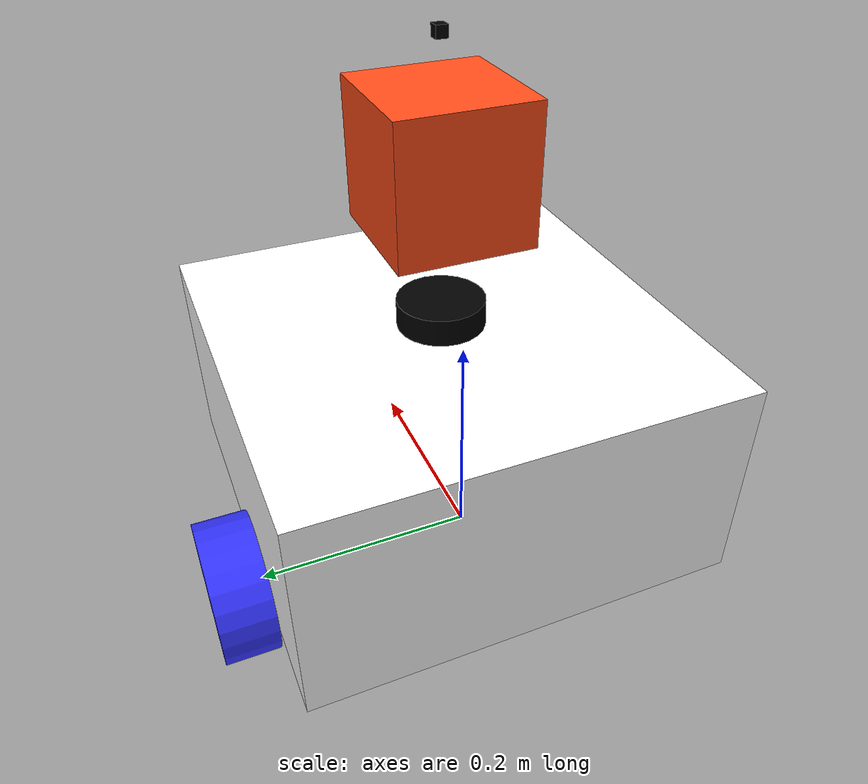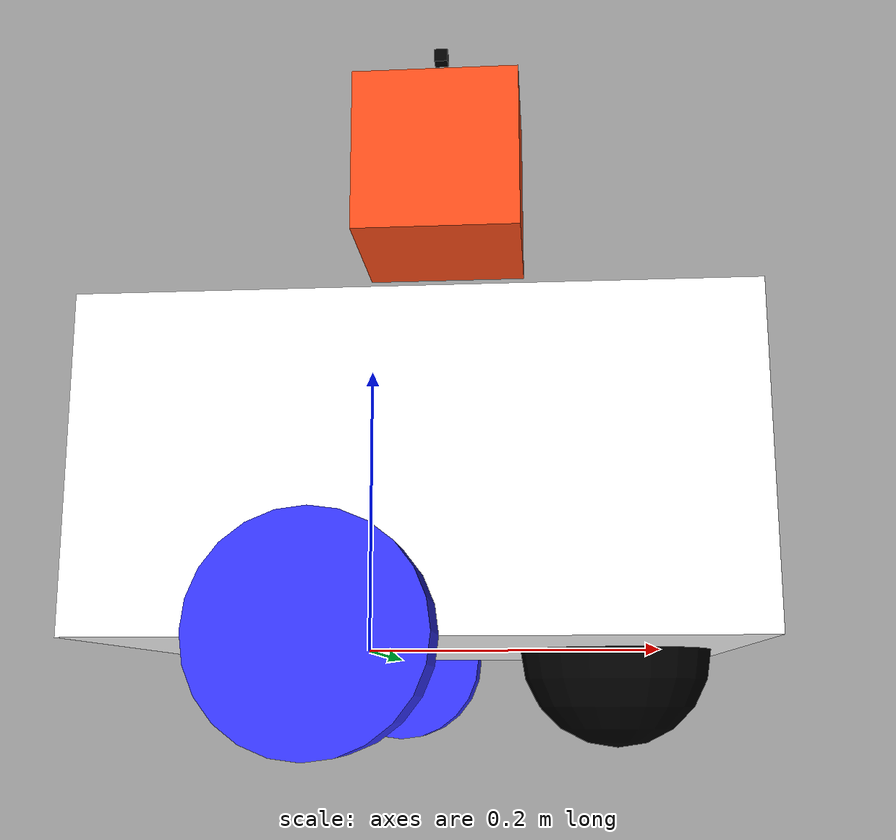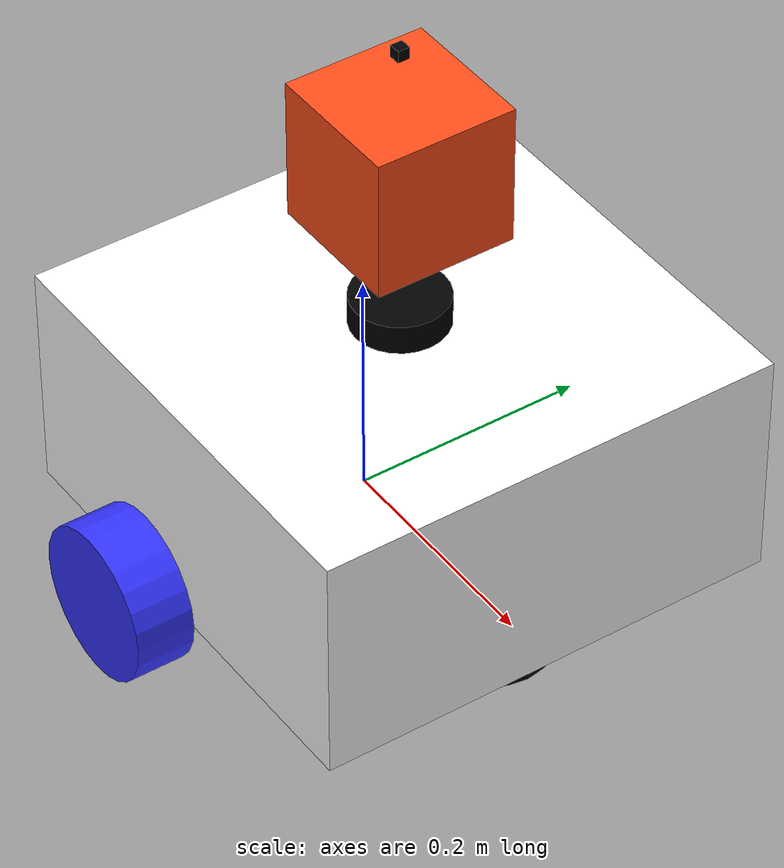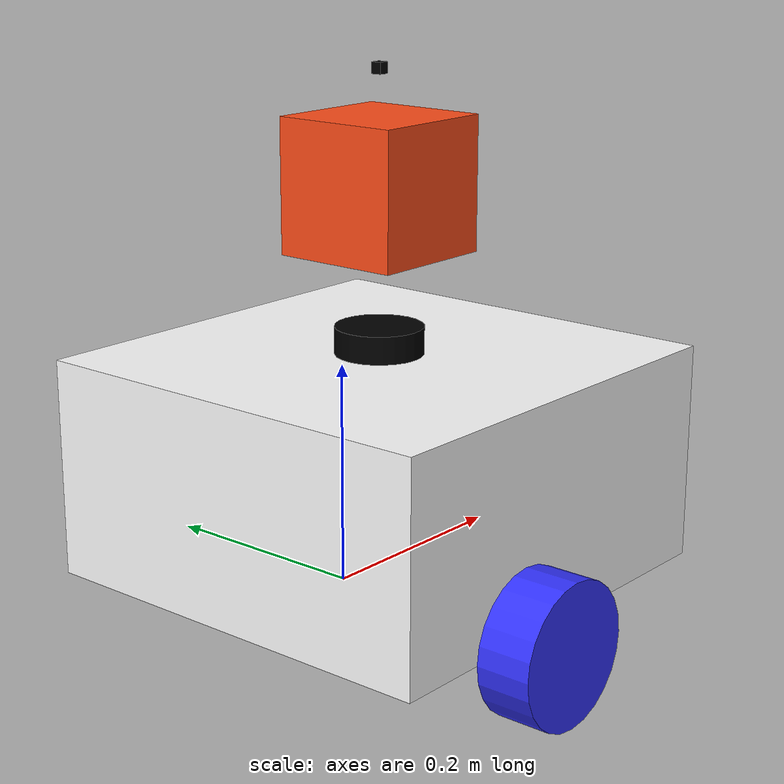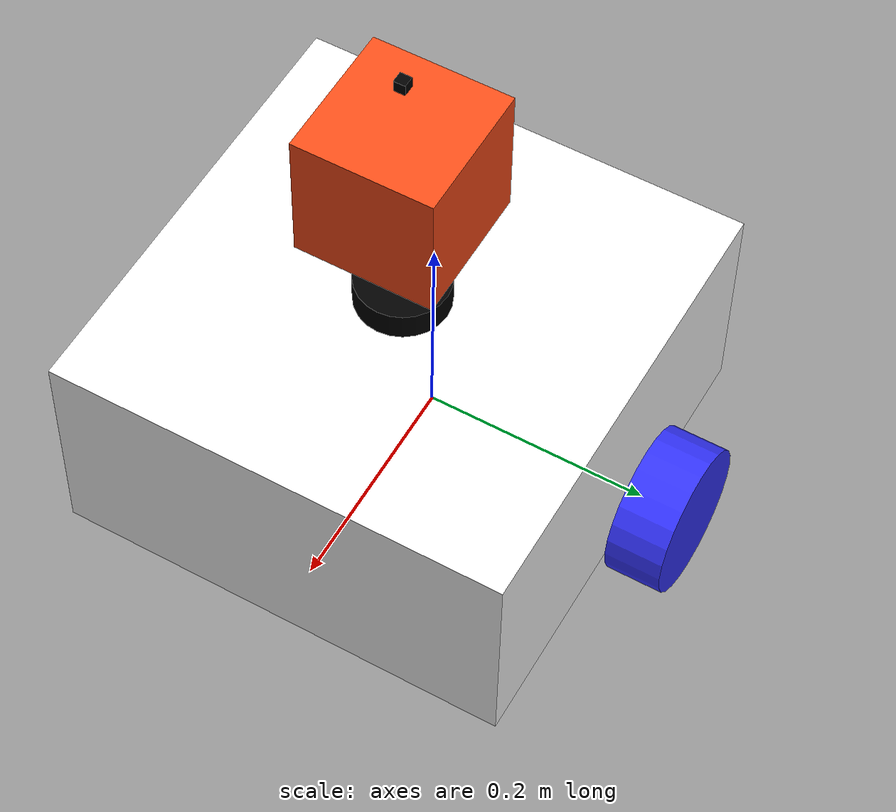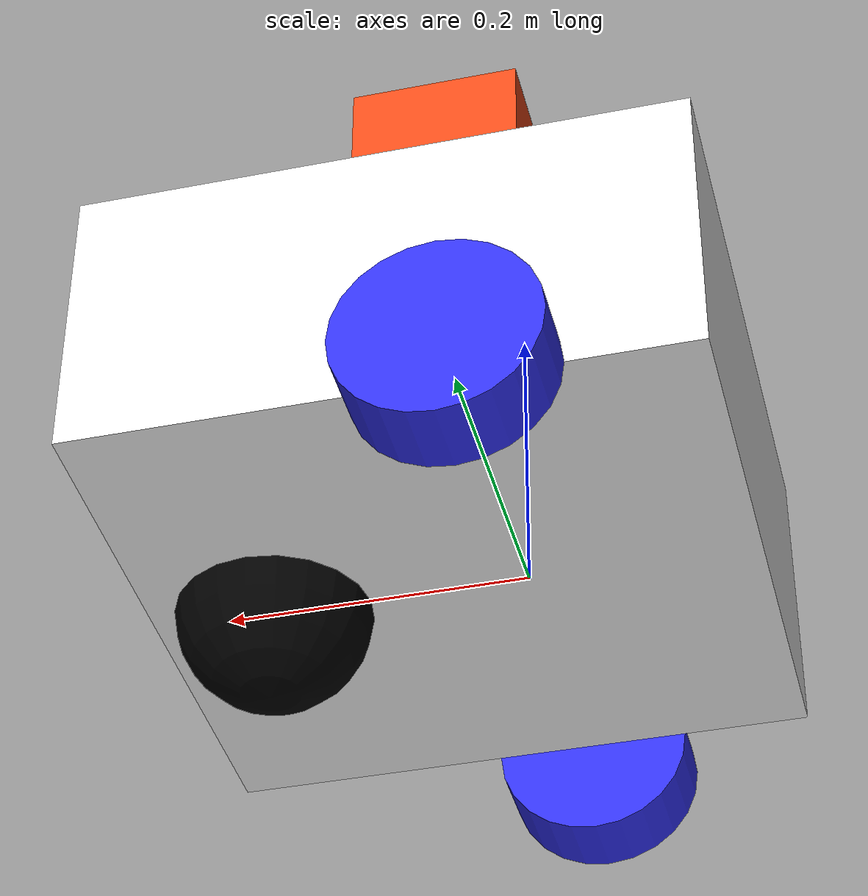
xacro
<?xml version="1.0"?>
<robot xmlns:xacro="http://www.ros.org/wiki/xacro" >

    <xacro:include filename="inertial_macros.xacro"/>

    <material name="white">
        <color rgba="1 1 1 1" />
    </material>

    <material name="orange">
        <color rgba="1 0.3 0.1 1"/>
    </material>

    <material name="blue">
        <color rgba="0.2 0.2 1 1"/>
    </material>

    <material name="black">
        <color rgba="0 0 0 1"/>
    </material>

    <!-- BASE LINK -->
    <link name="base_link">
    </link>

    <joint name = "base_footprint_joint" type="fixed">
        <parent link = "base_link"/>
        <child link = "base_footprint"/>
        <origin xyz = "0 0 0" rpy ="0 0 0"/>
    </joint>

    <link name = "base_footprint">
    </link>

    <!-- CHASSIS LINK -->
    <joint name="chassis_joint" type="fixed">
        <parent link="base_link"/>
        <child link="chassis"/>
        <origin xyz="-0.15 0 0"/>
    </joint>

    <link name="chassis">
        <visual>
            <origin xyz="0.2 0 0.1"/>
            <geometry>
                <box size="0.4 0.4 0.2"/>
            </geometry>
            <material name="white"/>
        </visual>
        <collision>
            <origin xyz="0.2 0 0.1"/>
            <geometry>
                <box size="0.4 0.4 0.2"/>
            </geometry>
        </collision>
        <xacro:inertial_box mass="0.8" x="0.4" y="0.4" z="0.2">
            <origin xyz="0.2 0 0.1" rpy="0 0 0"/>
        </xacro:inertial_box>
    </link>

    <!-- CAMERA BOX LINK -->
    <joint name="camera_box_joint" type="fixed">
        <parent link="chassis"/>
        <child link="camera_box"/>
        <origin xyz="0.2 0 0.3"/>
    </joint>

    <link name="camera_box">
        <visual>
            <origin xyz="0 0 0.05"/>
            <geometry>
                <box size="0.12 0.12 0.12"/>
            </geometry>
            <material name="orange"/>
        </visual>
        <collision>
            <origin xyz="0 0 0.05"/>
            <geometry>
                <box size="0.12 0.12 0.12"/>
            </geometry>
        </collision>
        <xacro:inertial_box mass="0.1" x="0.12" y="0.12" z="0.12">
            <origin xyz="0 0 0.05" rpy="0 0 0"/>
        </xacro:inertial_box>
    </link>

    <!-- CAMERA SENSOR -->
    <joint name="camera_joint" type="fixed">
        <parent link="camera_box"/>
        <child link="camera_link"/>
        <origin xyz="0 0 0.15"/>
    </joint>

    <link name="camera_link">
        <visual>
            <geometry>
                <box size="0.01 0.01 0.01"/>
            </geometry>
            <material name="black"/>
        </visual>
    </link>

    <gazebo reference="camera_link">
        <sensor name="camera" type="camera">
            <pose>0 0 0.1 0 0 0</pose>
            <update_rate>10</update_rate>
            <camera>
                <horizontal_fov>1.047</horizontal_fov>
                <image>
                    <width>640</width>
                    <height>480</height>
                    <format>R8G8B8</format>
                </image>
                <clip>
                    <near>0.1</near>
                    <far>100</far>
                </clip>
            </camera>
            <plugin name="camera_controller" filename="libgazebo_ros_camera.so">
                <alwaysOn>true</alwaysOn>
                <updateRate>10</updateRate>
                <cameraName>camera</cameraName>
                <imageTopicName>image_raw</imageTopicName>
                <frameName>camera_optical_frame</frameName>
            </plugin>
        </sensor>
    </gazebo>

    <!-- LIDAR LINK -->
    <joint name="lidar_joint" type="fixed">
        <parent link="chassis"/>
        <child link="lidar_link"/>
        <origin xyz="0.2 0 0.2"/>
    </joint>

    <link name="lidar_link">
        <visual>
            <geometry>
                <cylinder radius="0.04" length="0.05"/>
            </geometry>
            <material name="black"/>
        </visual>
        <collision>
            <geometry>
                <cylinder radius="0.04" length="0.05"/>
            </geometry>
        </collision>
        <xacro:inertial_cylinder mass="0.1" length="0.05" radius="0.04">
            <origin xyz="0 0 0" rpy="0 0 0"/>
        </xacro:inertial_cylinder>
    </link>

    <gazebo reference="lidar_link">
        <sensor name="lidar" type="ray">
            <pose>0 0 0 0 0 0</pose>
            <visualize>true</visualize>
            <update_rate>10</update_rate>
            <ray>
                <scan>
                    <horizontal>
                        <samples>360</samples>
                        <resolution>1</resolution>
                        <min_angle>-3.14159</min_angle>
                        <max_angle>3.14159</max_angle>
                    </horizontal>
                </scan>
                <range>
                    <min>0.3</min>
                    <max>12.0</max>
                    <resolution>0.01</resolution>
                </range>
            </ray>
            <plugin name="laser_controller" filename="libgazebo_ros_ray_sensor.so">
                <ros>
                    <argument>~/out:=scan</argument>
                </ros>
                <output_type>sensor_msgs/LaserScan</output_type>
                <frame_name>lidar_link</frame_name>
            </plugin>
        </sensor>
    </gazebo>

    <!-- LEFT WHEEL LINK -->
    <joint name="left_wheel_joint" type="continuous">
        <parent link="base_link"/>
        <child link="left_wheel"/>
        <origin xyz="0 0.225 0" rpy="-${pi/2} 0 0" />
        <axis xyz="0 0 1"/>
    </joint>

    <link name="left_wheel">
        <visual>
            <geometry>
                <cylinder radius="0.065" length="0.05"/>
            </geometry>
            <material name="blue"/>
        </visual>
        <collision>
            <geometry>
                <cylinder radius="0.065" length="0.05"/>
            </geometry>
        </collision>
        <xacro:inertial_cylinder mass="0.1" length="0.05" radius="0.065">
            <origin xyz="0 0 0" rpy="0 0 0"/>
        </xacro:inertial_cylinder>
    </link>

    <gazebo reference="left_wheel">
        <material>Gazebo/Blue</material>
    </gazebo>

    <!-- RIGHT WHEEL LINK -->
    <joint name="right_wheel_joint" type="continuous">
        <parent link="base_link"/>
        <child link="right_wheel"/>
        <origin xyz="0 -0.225 0" rpy="-${pi/2} 0 0" />
        <axis xyz="0 0 1"/>
    </joint>

    <link name="right_wheel">
        <visual>
            <geometry>
                <cylinder radius="0.065" length="0.05"/>
            </geometry>
            <material name="blue"/>
        </visual>
        <collision>
            <geometry>
                <cylinder radius="0.065" length="0.05"/>
            </geometry>
        </collision>
        <xacro:inertial_cylinder mass="0.1" length="0.05" radius="0.065">
            <origin xyz="0 0 0" rpy="0 0 0"/>
        </xacro:inertial_cylinder>
    </link>

    <gazebo reference="right_wheel">
        <material>Gazebo/Blue</material>
    </gazebo>

    <!-- CASTER WHEEL LINK -->
    <joint name="caster_wheel_joint" type="fixed">
        <parent link="chassis"/>
        <child link="caster_wheel"/>
        <origin xyz="0.32 0 0"/>
    </joint>

    <link name="caster_wheel">
        <visual>
            <geometry>
                <sphere radius="0.065"/>
            </geometry>
            <material name="black"/>
        </visual>
        <collision>
            <geometry>
                <sphere radius="0.065"/>
            </geometry>
        </collision>
        <xacro:inertial_sphere mass="0.1" radius="0.065">
            <origin xyz="0 0 0" rpy="0 0 0"/>
        </xacro:inertial_sphere>
    </link>

    <gazebo reference="caster_wheel">
        <material>Gazebo/Black</material>
        <mu1 value="0.001"/>
        <mu2 value="0.001"/>
    </gazebo>

</robot>
